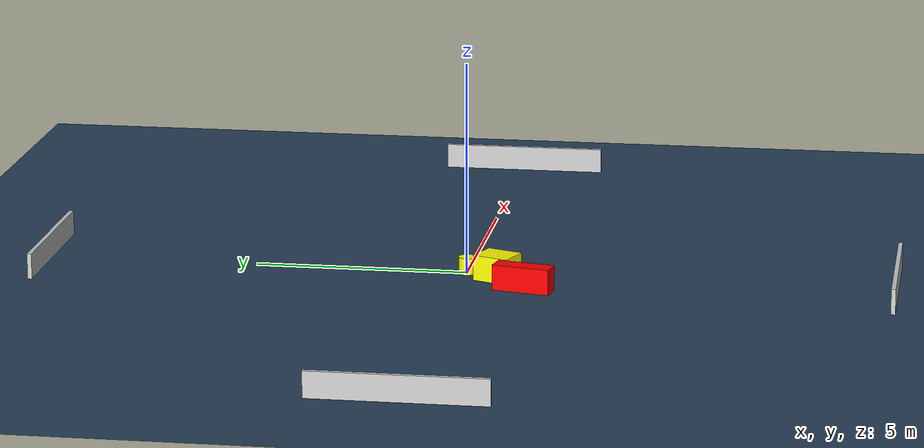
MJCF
<?xml version="1.0" ?>
<mujoco model="generated_environment">
  <option timestep="0.01" integrator="RK4" cone="elliptic"/>
  <default>
    <geom density="1"/>
  </default>
  <asset>
    <texture builtin="gradient" height="3072" name="skybox" rgb1="0.3 0.5 0.7" rgb2="0 0 0" type="skybox" width="512"/>
    <texture builtin="checker" height="300" name="groundplane" rgb1="0.2 0.3 0.4" rgb2="0.1 0.2 0.3" type="2d" width="300"/>
    <material name="groundplane" reflectance="0.2" texrepeat="5 5" texture="groundplane"/>
  </asset>
  <worldbody>
    <light dir="0 0 -1" directional="true" pos="0 0 1.5"/>
    <geom condim="3" friction="0.5 0.005 0.001" material="groundplane" name="floor" pos="0 0 0" size="0 0 0.05" type="plane"/>
    <body name="walls">
      <geom name="wall_1" condim="4" pos="-10.0 0.0 0.3" rgba="0.800000011920929 0.800000011920929 0.800000011920929 1.0" size="0.05 2.0 0.3" type="box"/>
      <geom name="wall_2" condim="4" pos="10.0 0.0 0.3" rgba="0.800000011920929 0.800000011920929 0.800000011920929 1.0" size="0.05 2.0 0.3" type="box"/>
      <geom name="wall_3" condim="4" pos="0.0 -10.0 0.3" rgba="0.800000011920929 0.800000011920929 0.800000011920929 1.0" size="2.0 0.05 0.3" type="box"/>
      <geom name="wall_4" condim="4" pos="0.0 10.0 0.3" rgba="0.800000011920929 0.800000011920929 0.800000011920929 1.0" size="2.0 0.05 0.3" type="box"/>
    </body>
    <body name="robot">
      <joint name="joint_x" type="slide" pos="0 0 0" axis="1 0 0"/>
      <joint name="joint_y" type="slide" pos="0 0 0" axis="0 1 0"/>
      <geom name="robot" type="cylinder" pos="0.0 0.0 0.2" size="0.2 0.2 0.0" mass="5.0" friction="1.0 0.005 0.0001" condim="4" rgba="1.0 1.0 0.0 1.0"/>
    </body>
    <body name="obstacle_1_movable">
      <geom name="obstacle_1_movable" condim="4" pos="-0.3872614814358521 -0.7685576736515426 0.3" euler="0 0 158.73980633923793" friction="0.0 0.005 0.001" rgba="1.0 1.0 0.0 1.0" size="0.3702534412721523 0.43442845080175124 0.3" type="box" mass="0.1"/>
      <joint type="free"/>
    </body>
    <body name="obstacle_2_static">
      <geom name="obstacle_2_static" condim="4" pos="-1.2531771997238927 -1.4898479914090774 0.3" euler="0 0 78.04181446665604" friction="0.0 0.005 0.001" rgba="1.0 0.0 0.0 1.0" size="0.6815401381061434 0.22609194879281425 0.3" type="box"/>
    </body>
  </worldbody>
  <actuator>
    <motor name="actuator_x" joint="joint_x" gear="1" ctrlrange="-1 1"/>
    <motor name="actuator_y" joint="joint_y" gear="1" ctrlrange="-1 1"/>
  </actuator>
</mujoco>
